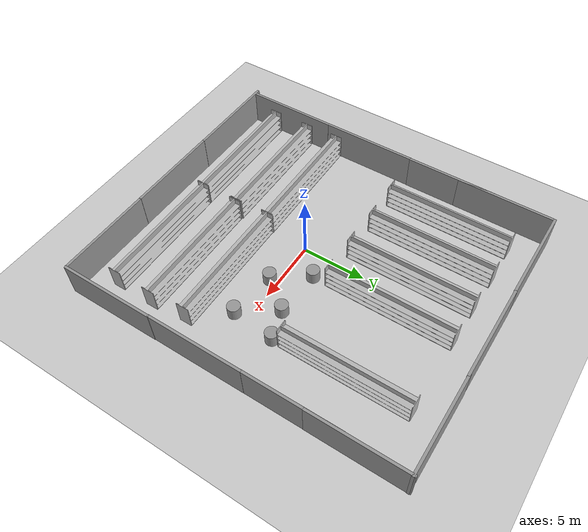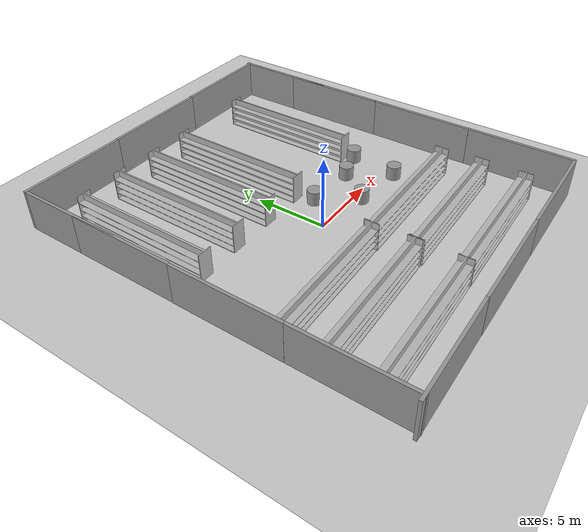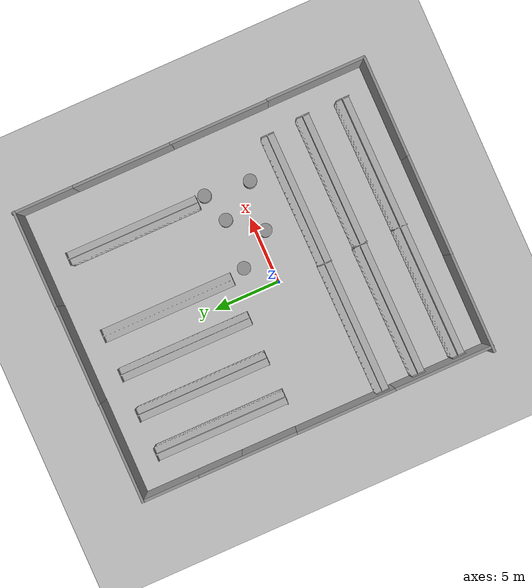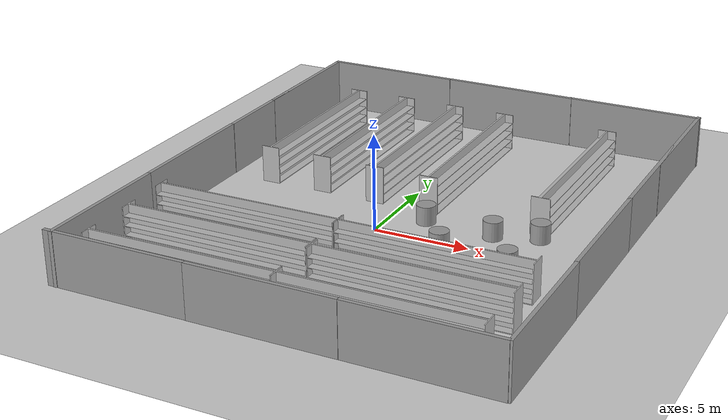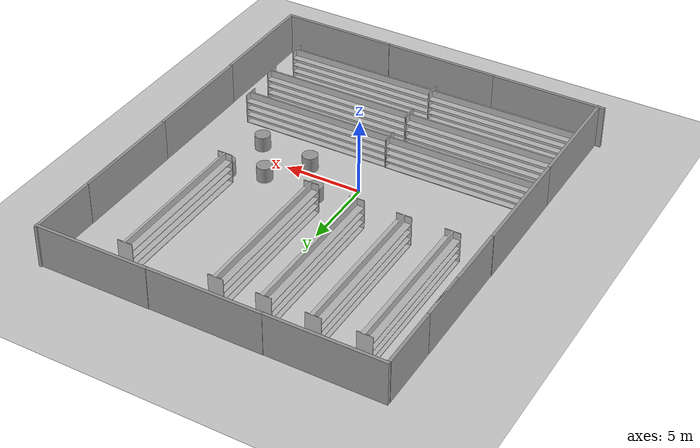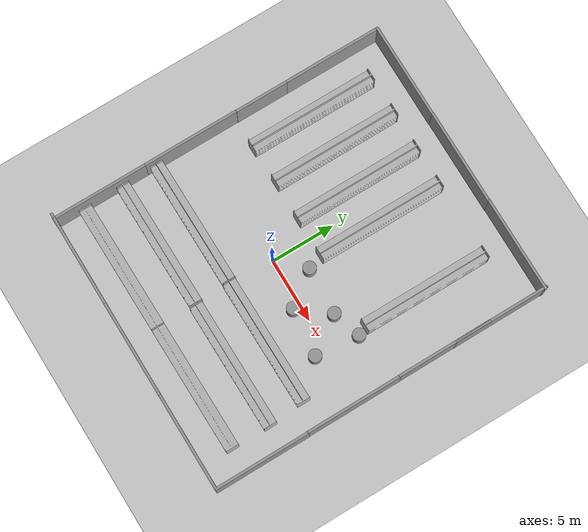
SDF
<sdf version="1.6">
 <world name="default">
  <light name="sun" type="directional">
   <pose>0 0 10 0 -0 0</pose>
   <diffuse>0.8 0.8 0.8 1</diffuse>
   <specular>0.1 0.1 0.1 1</specular>
   <attenuation>
    <range>1000</range>
    <constant>0.9</constant>
    <linear>0.01</linear>
    <quadratic>0.001</quadratic>
   </attenuation>
   <direction>-0.5 0.5 -1</direction>
  </light>
  <model name="ground_plane">
   <static>1</static>
   <link name="link">
    <collision name="collision">
     <geometry><plane><normal>0 0 1</normal><size>100 100</size></plane></geometry>
     <surface><friction><ode><mu>100</mu><mu2>50</mu2></ode></friction></surface>
    </collision>
    <visual name="visual">
     <cast_shadows>0</cast_shadows>
     <geometry><plane><normal>0 0 1</normal><size>100 100</size></plane></geometry>
     <material>
      <script><uri>file://media/materials/scripts/gazebo.material</uri><name>Gazebo/Grey</name></script>
     </material>
    </visual>
   </link>
  </model>
  <physics name="default_physics" default="0" type="ode">
   <max_step_size>0.01</max_step_size>
   <real_time_factor>1</real_time_factor>
   <real_time_update_rate>100</real_time_update_rate>
  </physics>
  <gravity>0 0 -9.8</gravity>
  <magnetic_field>6e-06 2.3e-05 -4.2e-05</magnetic_field>
  <atmosphere type="adiabatic"/>
  <scene><ambient>0.4 0.4 0.4 1</ambient><background>0.7 0.7 0.7 1</background><shadows>1</shadows></scene>
  <spherical_coordinates>
   <surface_model>EARTH_WGS84</surface_model>
   <latitude_deg>0</latitude_deg>
   <longitude_deg>0</longitude_deg>
   <elevation>0</elevation>
   <heading_deg>0</heading_deg>
  </spherical_coordinates>
  <model name="shelf_new_0">
   <static>1</static>
   <link name="link">
    <collision name="collision">
     <pose>0.5 5 1 0 -0 0</pose>
     <geometry><box><size>1 10 2</size></box></geometry>
    </collision>
    <visual name="visual">
     <geometry><mesh><uri>model://shelf/meshes/shelf_new.dae</uri><scale>1 1 1</scale></mesh></geometry>
    </visual>
   </link>
   <pose>1.01526 2.93708 0 0 -0 0</pose>
  </model>
  <model name="shelf_new_1">
   <static>1</static>
   <link name="link">
    <collision name="collision">
     <pose>0.5 5 1 0 -0 0</pose>
     <geometry><box><size>1 10 2</size></box></geometry>
    </collision>
    <visual name="visual">
     <geometry><mesh><uri>model://shelf/meshes/shelf_new.dae</uri><scale>1 1 1</scale></mesh></geometry>
    </visual>
   </link>
   <pose>-2.02885 2.93645 0 0 -0 0</pose>
  </model>
  <model name="shelf_new_2">
   <static>1</static>
   <link name="link">
    <collision name="collision">
     <pose>0.5 5 1 0 -0 0</pose>
     <geometry><box><size>1 10 2</size></box></geometry>
    </collision>
    <visual name="visual">
     <geometry><mesh><uri>model://shelf/meshes/shelf_new.dae</uri><scale>1 1 1</scale></mesh></geometry>
    </visual>
   </link>
   <pose>-5.10978 2.97207 0 0 -0 0</pose>
  </model>
  <model name="shelf_new_3">
   <static>1</static>
   <link name="link">
    <collision name="collision">
     <pose>0.5 5 1 0 -0 0</pose>
     <geometry><box><size>1 10 2</size></box></geometry>
    </collision>
    <visual name="visual">
     <geometry><mesh><uri>model://shelf/meshes/shelf_new.dae</uri><scale>1 1 1</scale></mesh></geometry>
    </visual>
   </link>
   <pose>-8.15587 2.89897 0 0 -0 0</pose>
  </model>
  <model name="shelf_new_4">
   <static>1</static>
   <link name="link">
    <collision name="collision">
     <pose>0.5 5 1 0 -0 0</pose>
     <geometry><box><size>1 10 2</size></box></geometry>
    </collision>
    <visual name="visual">
     <geometry><mesh><uri>model://shelf/meshes/shelf_new.dae</uri><scale>1 1 1</scale></mesh></geometry>
    </visual>
   </link>
   <pose>6.9904 2.97347 0 0 -0 0</pose>
  </model>
  <model name="shelf_new_5">
   <static>1</static>
   <link name="link">
    <collision name="collision">
     <pose>0.5 5 1 0 -0 0</pose>
     <geometry><box><size>1 10 2</size></box></geometry>
    </collision>
    <visual name="visual">
     <geometry><mesh><uri>model://shelf/meshes/shelf_new.dae</uri><scale>1 1 1</scale></mesh></geometry>
    </visual>
   </link>
   <pose>0.066395 -9.89739 0 0 -0 1.57922</pose>
  </model>
  <model name="shelf_new_5_clone">
   <static>1</static>
   <link name="link">
    <collision name="collision">
     <pose>0.5 5 1 0 -0 0</pose>
     <geometry><box><size>1 10 2</size></box></geometry>
    </collision>
    <visual name="visual">
     <geometry><mesh><uri>model://shelf/meshes/shelf_new.dae</uri><scale>1 1 1</scale></mesh></geometry>
    </visual>
   </link>
   <pose>10.0529 -9.81999 0 0 -0 1.57922</pose>
  </model>
  <model name="shelf_new_5_clone_0">
   <static>1</static>
   <link name="link">
    <collision name="collision">
     <pose>0.5 5 1 0 -0 0</pose>
     <geometry><box><size>1 10 2</size></box></geometry>
    </collision>
    <visual name="visual">
     <geometry><mesh><uri>model://shelf/meshes/shelf_new.dae</uri><scale>1 1 1</scale></mesh></geometry>
    </visual>
   </link>
   <pose>0.025884 -6.78234 0 0 -0 1.57922</pose>
  </model>
  <model name="shelf_new_5_clone_1">
   <static>1</static>
   <link name="link">
    <collision name="collision">
     <pose>0.5 5 1 0 -0 0</pose>
     <geometry><box><size>1 10 2</size></box></geometry>
    </collision>
    <visual name="visual">
     <geometry><mesh><uri>model://shelf/meshes/shelf_new.dae</uri><scale>1 1 1</scale></mesh></geometry>
    </visual>
   </link>
   <pose>10.0783 -6.75893 0 0 -0 1.57922</pose>
  </model>
  <model name="shelf_new_5_clone_0_clone">
   <static>1</static>
   <link name="link">
    <collision name="collision">
     <pose>0.5 5 1 0 -0 0</pose>
     <geometry><box><size>1 10 2</size></box></geometry>
    </collision>
    <visual name="visual">
     <geometry><mesh><uri>model://shelf/meshes/shelf_new.dae</uri><scale>1 1 1</scale></mesh></geometry>
    </visual>
   </link>
   <pose>-0.082345 -3.97029 0 0 -0 1.57922</pose>
  </model>
  <model name="shelf_new_5_clone_0_clone_0">
   <static>1</static>
   <link name="link">
    <collision name="collision">
     <pose>0.5 5 1 0 -0 0</pose>
     <geometry><box><size>1 10 2</size></box></geometry>
    </collision>
    <visual name="visual">
     <geometry><mesh><uri>model://shelf/meshes/shelf_new.dae</uri><scale>1 1 1</scale></mesh></geometry>
    </visual>
   </link>
   <pose>9.84187 -3.92369 0 0 -0 1.57922</pose>
  </model>
  <model name="grey_wall">
   <static>1</static>
   <link name="link">
    <pose>0 0 1.4 0 -0 0</pose>
    <collision name="collision"><geometry><box><size>7.5 0.2 2.8</size></box></geometry></collision>
    <visual name="visual">
     <cast_shadows>0</cast_shadows>
     <geometry><box><size>7.5 0.2 2.8</size></box></geometry>
     <material>
      <script>
       <uri>model://grey_wall/materials/scripts</uri>
       <uri>model://grey_wall/materials/textures</uri>
       <name>vrc/grey_wall</name>
      </script>
     </material>
    </visual>
   </link>
   <pose>8.16119 -11.7288 0 0 -0 0</pose>
  </model>
  <model name="grey_wall_0">
   <static>1</static>
   <link name="link">
    <pose>0 0 1.4 0 -0 0</pose>
    <collision name="collision"><geometry><box><size>7.5 0.2 2.8</size></box></geometry></collision>
    <visual name="visual">
     <cast_shadows>0</cast_shadows>
     <geometry><box><size>7.5 0.2 2.8</size></box></geometry>
     <material>
      <script>
       <uri>model://grey_wall/materials/scripts</uri>
       <uri>model://grey_wall/materials/textures</uri>
       <name>vrc/grey_wall</name>
      </script>
     </material>
    </visual>
   </link>
   <pose>0.649733 -11.7325 0 0 -0 0</pose>
  </model>
  <model name="grey_wall_1">
   <static>1</static>
   <link name="link">
    <pose>0 0 1.4 0 -0 0</pose>
    <collision name="collision"><geometry><box><size>7.5 0.2 2.8</size></box></geometry></collision>
    <visual name="visual">
     <cast_shadows>0</cast_shadows>
     <geometry><box><size>7.5 0.2 2.8</size></box></geometry>
     <material>
      <script>
       <uri>model://grey_wall/materials/scripts</uri>
       <uri>model://grey_wall/materials/textures</uri>
       <name>vrc/grey_wall</name>
      </script>
     </material>
    </visual>
   </link>
   <pose>-6.81572 -11.7224 0 0 -0 0</pose>
  </model>
  <model name="grey_wall_2">
   <static>1</static>
   <link name="link">
    <pose>0 0 1.4 0 -0 0</pose>
    <collision name="collision"><geometry><box><size>7.5 0.2 2.8</size></box></geometry></collision>
    <visual name="visual">
     <cast_shadows>0</cast_shadows>
     <geometry><box><size>7.5 0.2 2.8</size></box></geometry>
     <material>
      <script>
       <uri>model://grey_wall/materials/scripts</uri>
       <uri>model://grey_wall/materials/textures</uri>
       <name>vrc/grey_wall</name>
      </script>
     </material>
    </visual>
   </link>
   <pose>-10.1337 -8.09513 0 0 0 -1.56966</pose>
  </model>
  <model name="grey_wall_2_clone">
   <static>1</static>
   <link name="link">
    <pose>0 0 1.4 0 -0 0</pose>
    <collision name="collision"><geometry><box><size>7.5 0.2 2.8</size></box></geometry></collision>
    <visual name="visual">
     <cast_shadows>0</cast_shadows>
     <geometry><box><size>7.5 0.2 2.8</size></box></geometry>
     <material>
      <script>
       <uri>model://grey_wall/materials/scripts</uri>
       <uri>model://grey_wall/materials/textures</uri>
       <name>vrc/grey_wall</name>
      </script>
     </material>
    </visual>
   </link>
   <pose>-10.1476 -0.594839 0 0 0 -1.56966</pose>
  </model>
  <model name="grey_wall_2_clone_0">
   <static>1</static>
   <link name="link">
    <pose>0 0 1.4 0 -0 0</pose>
    <collision name="collision"><geometry><box><size>7.5 0.2 2.8</size></box></geometry></collision>
    <visual name="visual">
     <cast_shadows>0</cast_shadows>
     <geometry><box><size>7.5 0.2 2.8</size></box></geometry>
     <material>
      <script>
       <uri>model://grey_wall/materials/scripts</uri>
       <uri>model://grey_wall/materials/textures</uri>
       <name>vrc/grey_wall</name>
      </script>
     </material>
    </visual>
   </link>
   <pose>-10.1359 6.89422 0 0 0 -1.56966</pose>
  </model>
  <model name="grey_wall_2_clone_1">
   <static>1</static>
   <link name="link">
    <pose>0 0 1.4 0 -0 0</pose>
    <collision name="collision"><geometry><box><size>7.5 0.2 2.8</size></box></geometry></collision>
    <visual name="visual">
     <cast_shadows>0</cast_shadows>
     <geometry><box><size>7.5 0.2 2.8</size></box></geometry>
     <material>
      <script>
       <uri>model://grey_wall/materials/scripts</uri>
       <uri>model://grey_wall/materials/textures</uri>
       <name>vrc/grey_wall</name>
      </script>
     </material>
    </visual>
   </link>
   <pose>-10.1356 11.0566 0 0 0 -1.56966</pose>
  </model>
  <model name="grey_wall_2_clone_1_clone">
   <static>1</static>
   <link name="link">
    <pose>0 0 1.4 0 -0 0</pose>
    <collision name="collision"><geometry><box><size>7.5 0.2 2.8</size></box></geometry></collision>
    <visual name="visual">
     <cast_shadows>0</cast_shadows>
     <geometry><box><size>7.5 0.2 2.8</size></box></geometry>
     <material>
      <script>
       <uri>model://grey_wall/materials/scripts</uri>
       <uri>model://grey_wall/materials/textures</uri>
       <name>vrc/grey_wall</name>
      </script>
     </material>
    </visual>
   </link>
   <pose>11.9236 -8.05333 0 0 0 -1.56966</pose>
  </model>
  <model name="grey_wall_2_clone_1_clone_0">
   <static>1</static>
   <link name="link">
    <pose>0 0 1.4 0 -0 0</pose>
    <collision name="collision"><geometry><box><size>7.5 0.2 2.8</size></box></geometry></collision>
    <visual name="visual">
     <cast_shadows>0</cast_shadows>
     <geometry><box><size>7.5 0.2 2.8</size></box></geometry>
     <material>
      <script>
       <uri>model://grey_wall/materials/scripts</uri>
       <uri>model://grey_wall/materials/textures</uri>
       <name>vrc/grey_wall</name>
      </script>
     </material>
    </visual>
   </link>
   <pose>11.8922 -0.641021 0 0 0 -1.56966</pose>
  </model>
  <model name="grey_wall_2_clone_1_clone_1">
   <static>1</static>
   <link name="link">
    <pose>0 0 1.4 0 -0 0</pose>
    <collision name="collision"><geometry><box><size>7.5 0.2 2.8</size></box></geometry></collision>
    <visual name="visual">
     <cast_shadows>0</cast_shadows>
     <geometry><box><size>7.5 0.2 2.8</size></box></geometry>
     <material>
      <script>
       <uri>model://grey_wall/materials/scripts</uri>
       <uri>model://grey_wall/materials/textures</uri>
       <name>vrc/grey_wall</name>
      </script>
     </material>
    </visual>
   </link>
   <pose>11.8756 6.74603 0 0 0 -1.56966</pose>
  </model>
  <model name="grey_wall_3">
   <static>1</static>
   <link name="link">
    <pose>0 0 1.4 0 -0 0</pose>
    <collision name="collision"><geometry><box><size>7.5 0.2 2.8</size></box></geometry></collision>
    <visual name="visual">
     <cast_shadows>0</cast_shadows>
     <geometry><box><size>7.5 0.2 2.8</size></box></geometry>
     <material>
      <script>
       <uri>model://grey_wall/materials/scripts</uri>
       <uri>model://grey_wall/materials/textures</uri>
       <name>vrc/grey_wall</name>
      </script>
     </material>
    </visual>
   </link>
   <pose>-6.47366 14.9151 0 0 -0 0</pose>
  </model>
  <model name="grey_wall_4">
   <static>1</static>
   <link name="link">
    <pose>0 0 1.4 0 -0 0</pose>
    <collision name="collision"><geometry><box><size>7.5 0.2 2.8</size></box></geometry></collision>
    <visual name="visual">
     <cast_shadows>0</cast_shadows>
     <geometry><box><size>7.5 0.2 2.8</size></box></geometry>
     <material>
      <script>
       <uri>model://grey_wall/materials/scripts</uri>
       <uri>model://grey_wall/materials/textures</uri>
       <name>vrc/grey_wall</name>
      </script>
     </material>
    </visual>
   </link>
   <pose>0.951752 14.9344 0 0 -0 0</pose>
  </model>
  <model name="grey_wall_5">
   <static>1</static>
   <link name="link">
    <pose>0 0 1.4 0 -0 0</pose>
    <collision name="collision"><geometry><box><size>7.5 0.2 2.8</size></box></geometry></collision>
    <visual name="visual">
     <cast_shadows>0</cast_shadows>
     <geometry><box><size>7.5 0.2 2.8</size></box></geometry>
     <material>
      <script>
       <uri>model://grey_wall/materials/scripts</uri>
       <uri>model://grey_wall/materials/textures</uri>
       <name>vrc/grey_wall</name>
      </script>
     </material>
    </visual>
   </link>
   <pose>8.25779 14.9594 0 0 -0 0</pose>
  </model>
  <model name="grey_wall_2_clone_1_clone_1_clone">
   <static>1</static>
   <link name="link">
    <pose>0 0 1.4 0 -0 0</pose>
    <collision name="collision"><geometry><box><size>7.5 0.2 2.8</size></box></geometry></collision>
    <visual name="visual">
     <cast_shadows>0</cast_shadows>
     <geometry><box><size>7.5 0.2 2.8</size></box></geometry>
     <material>
      <script>
       <uri>model://grey_wall/materials/scripts</uri>
       <uri>model://grey_wall/materials/textures</uri>
       <name>vrc/grey_wall</name>
      </script>
     </material>
    </visual>
   </link>
   <pose>11.8829 11.3946 0 0 0 -1.56966</pose>
  </model>
  <model name="unit_cylinder">
   <pose>7.77447 2.37914 0.499789 0.000422 0.000422 -3e-06</pose>
   <link name="link">
    <inertial>
     <mass>1</mass>
     <inertia><ixx>0.145833</ixx><ixy>0</ixy><ixz>0</ixz><iyy>0.145833</iyy><iyz>0</iyz><izz>0.125</izz></inertia>
    </inertial>
    <collision name="collision">
     <geometry><cylinder><radius>0.5</radius><length>1</length></cylinder></geometry>
    </collision>
    <visual name="visual">
     <geometry><cylinder><radius>0.5</radius><length>1</length></cylinder></geometry>
     <material>
      <script><name>Gazebo/Grey</name><uri>file://media/materials/scripts/gazebo.material</uri></script>
     </material>
    </visual>
   </link>
  </model>
  <model name="unit_cylinder_0">
   <pose>7.435 -1.03479 0.499789 0.000422 0.000422 -2e-06</pose>
   <link name="link">
    <inertial>
     <mass>1</mass>
     <inertia><ixx>0.145833</ixx><ixy>0</ixy><ixz>0</ixz><iyy>0.145833</iyy><iyz>0</iyz><izz>0.125</izz></inertia>
    </inertial>
    <collision name="collision">
     <geometry><cylinder><radius>0.5</radius><length>1</length></cylinder></geometry>
    </collision>
    <visual name="visual">
     <geometry><cylinder><radius>0.5</radius><length>1</length></cylinder></geometry>
     <material>
      <script><name>Gazebo/Grey</name><uri>file://media/materials/scripts/gazebo.material</uri></script>
     </material>
    </visual>
   </link>
  </model>
  <model name="unit_cylinder_1">
   <pose>5.57199 1.68302 0.5 0 0 -2e-06</pose>
   <link name="link">
    <inertial>
     <mass>1</mass>
     <inertia><ixx>0.145833</ixx><ixy>0</ixy><ixz>0</ixz><iyy>0.145833</iyy><iyz>0</iyz><izz>0.125</izz></inertia>
    </inertial>
    <collision name="collision">
     <geometry><cylinder><radius>0.5</radius><length>1</length></cylinder></geometry>
    </collision>
    <visual name="visual">
     <geometry><cylinder><radius>0.5</radius><length>1</length></cylinder></geometry>
     <material>
      <script><name>Gazebo/Grey</name><uri>file://media/materials/scripts/gazebo.material</uri></script>
     </material>
    </visual>
   </link>
  </model>
  <model name="unit_cylinder_2">
   <pose>3.76169 -0.610409 0.499789 0.000422 0.000422 -1e-06</pose>
   <link name="link">
    <inertial>
     <mass>1</mass>
     <inertia><ixx>0.145833</ixx><ixy>0</ixy><ixz>0</ixz><iyy>0.145833</iyy><iyz>0</iyz><izz>0.125</izz></inertia>
    </inertial>
    <collision name="collision">
     <geometry><cylinder><radius>0.5</radius><length>1</length></cylinder></geometry>
    </collision>
    <visual name="visual">
     <geometry><cylinder><radius>0.5</radius><length>1</length></cylinder></geometry>
     <material>
      <script><name>Gazebo/Grey</name><uri>file://media/materials/scripts/gazebo.material</uri></script>
     </material>
    </visual>
   </link>
  </model>
  <model name="unit_cylinder_3">
   <pose>1.89909 1.89238 0.499096 4.8e-05 4.8e-05 -1e-06</pose>
   <link name="link">
    <inertial>
     <mass>1</mass>
     <inertia><ixx>0.145833</ixx><ixy>0</ixy><ixz>0</ixz><iyy>0.145833</iyy><iyz>0</iyz><izz>0.125</izz></inertia>
    </inertial>
    <collision name="collision">
     <geometry><cylinder><radius>0.5</radius><length>1</length></cylinder></geometry>
    </collision>
    <visual name="visual">
     <geometry><cylinder><radius>0.5</radius><length>1</length></cylinder></geometry>
     <material>
      <script><name>Gazebo/Grey</name><uri>file://media/materials/scripts/gazebo.material</uri></script>
     </material>
    </visual>
   </link>
  </model>
 </world>
</sdf>
